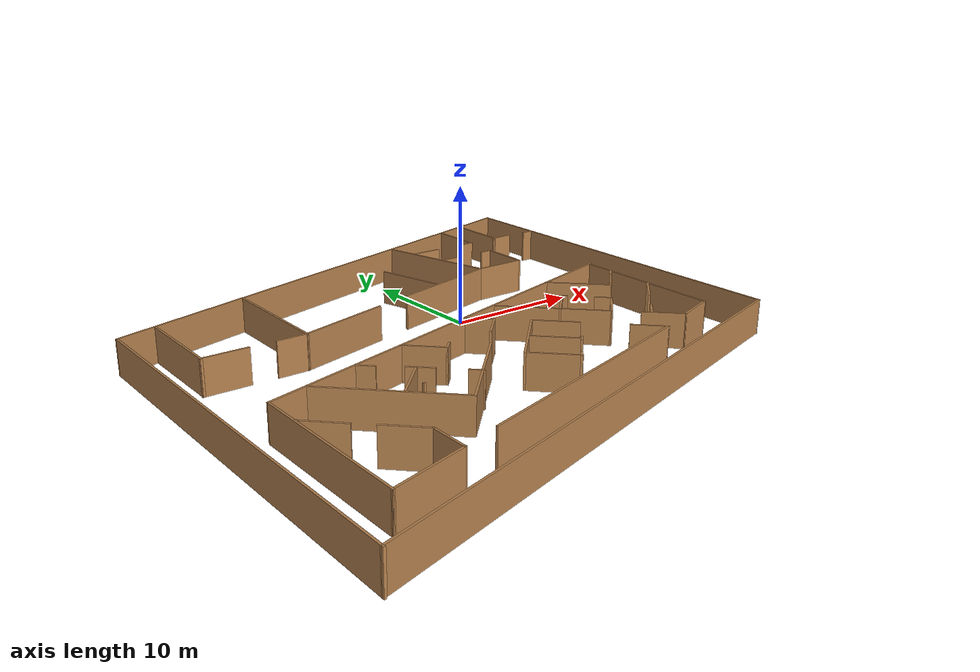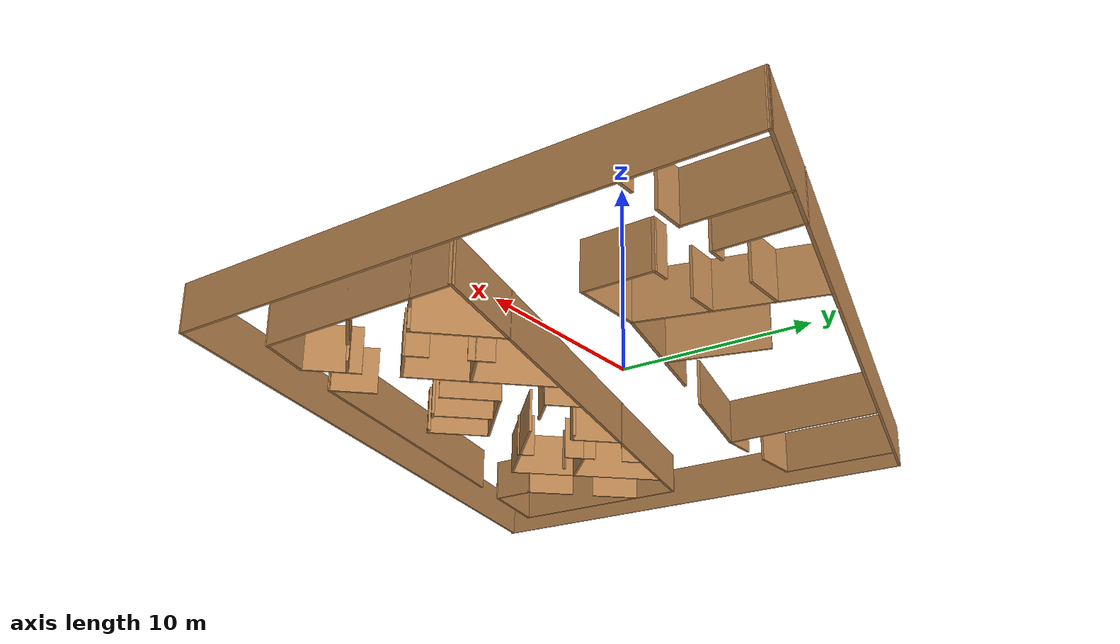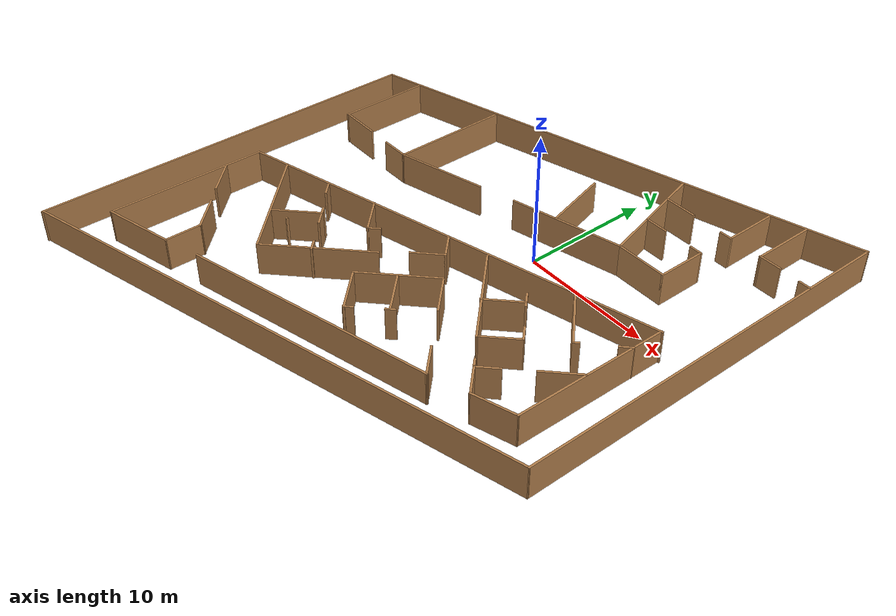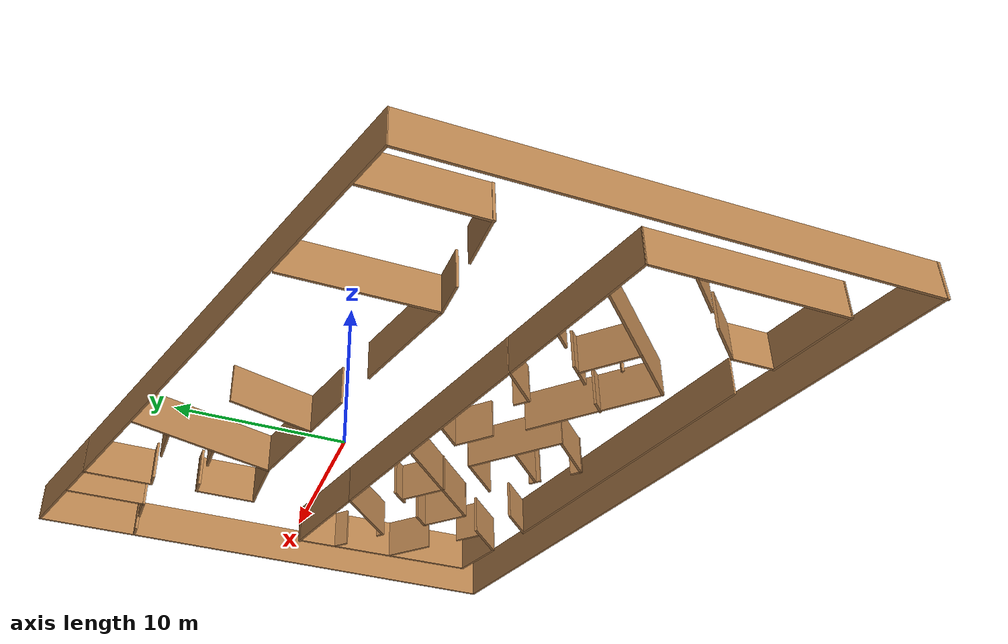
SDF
<?xml version='1.0'?>
<sdf version='1.6'>
  <model name='office_00'>
    <pose frame=''>-3.88497 -4.56169 0 0 -0 0</pose>
    <link name='Wall_101'>
      <collision name='Wall_101_Collision'>
        <geometry>
          <box>
            <size>1 0.15 2.5</size>
          </box>
        </geometry>
        <pose frame=''>0 0 1.25 0 -0 0</pose>
      </collision>
      <visual name='Wall_101_Visual'>
        <pose frame=''>0 0 1.25 0 -0 0</pose>
        <geometry>
          <box>
            <size>1 0.15 2.5</size>
          </box>
        </geometry>
        <material>
          <script>
            <uri>file://media/materials/scripts/gazebo.material</uri>
            <name>Gazebo/Wood</name>
          </script>
          <ambient>1 1 1 1</ambient>
        </material>
      </visual>
      <pose frame=''>-4.40372 -7.82931 0 0 -0 2.35619</pose>
    </link>
    <link name='Wall_103'>
      <collision name='Wall_103_Collision'>
        <geometry>
          <box>
            <size>0.75 0.15 2.5</size>
          </box>
        </geometry>
        <pose frame=''>0 0 1.25 0 -0 0</pose>
      </collision>
      <visual name='Wall_103_Visual'>
        <pose frame=''>0 0 1.25 0 -0 0</pose>
        <geometry>
          <box>
            <size>0.75 0.15 2.5</size>
          </box>
        </geometry>
        <material>
          <script>
            <uri>file://media/materials/scripts/gazebo.material</uri>
            <name>Gazebo/Wood</name>
          </script>
          <ambient>1 1 1 1</ambient>
        </material>
      </visual>
      <pose frame=''>-7.1738 -5.15473 0 0 -0 2.35619</pose>
    </link>
    <link name='Wall_106'>
      <collision name='Wall_106_Collision'>
        <geometry>
          <box>
            <size>1.25 0.15 2.5</size>
          </box>
        </geometry>
        <pose frame=''>0 0 1.25 0 -0 0</pose>
      </collision>
      <visual name='Wall_106_Visual'>
        <pose frame=''>0 0 1.25 0 -0 0</pose>
        <geometry>
          <box>
            <size>1.25 0.15 2.5</size>
          </box>
        </geometry>
        <material>
          <script>
            <uri>file://media/materials/scripts/gazebo.material</uri>
            <name>Gazebo/Wood</name>
          </script>
          <ambient>1 1 1 1</ambient>
        </material>
      </visual>
      <pose frame=''>-9.18517 -3.39843 0 0 0 -0.785398</pose>
    </link>
    <link name='Wall_108'>
      <collision name='Wall_108_Collision'>
        <geometry>
          <box>
            <size>3 0.15 2.5</size>
          </box>
        </geometry>
        <pose frame=''>0 0 1.25 0 -0 0</pose>
      </collision>
      <visual name='Wall_108_Visual'>
        <pose frame=''>0 0 1.25 0 -0 0</pose>
        <geometry>
          <box>
            <size>3 0.15 2.5</size>
          </box>
        </geometry>
        <material>
          <script>
            <uri>file://media/materials/scripts/gazebo.material</uri>
            <name>Gazebo/Wood</name>
          </script>
          <ambient>1 1 1 1</ambient>
        </material>
      </visual>
      <pose frame=''>-4.62958 -2.90259 0 0 0 -0.785398</pose>
    </link>
    <link name='Wall_109'>
      <collision name='Wall_109_Collision'>
        <geometry>
          <box>
            <size>1 0.15 2.5</size>
          </box>
        </geometry>
        <pose frame=''>0 0 1.25 0 -0 0</pose>
      </collision>
      <visual name='Wall_109_Visual'>
        <pose frame=''>0 0 1.25 0 -0 0</pose>
        <geometry>
          <box>
            <size>1 0.15 2.5</size>
          </box>
        </geometry>
        <material>
          <script>
            <uri>file://media/materials/scripts/gazebo.material</uri>
            <name>Gazebo/Wood</name>
          </script>
          <ambient>1 1 1 1</ambient>
        </material>
      </visual>
      <pose frame=''>-3.32143 -3.6097 0 0 -0 0.785398</pose>
    </link>
    <link name='Wall_111'>
      <collision name='Wall_111_Collision'>
        <geometry>
          <box>
            <size>12 0.15 2.5</size>
          </box>
        </geometry>
        <pose frame=''>0 0 1.25 0 -0 0</pose>
      </collision>
      <visual name='Wall_111_Visual'>
        <pose frame=''>0 0 1.25 0 -0 0</pose>
        <geometry>
          <box>
            <size>12 0.15 2.5</size>
          </box>
        </geometry>
        <material>
          <script>
            <uri>file://media/materials/scripts/gazebo.material</uri>
            <name>Gazebo/Wood</name>
          </script>
          <ambient>1 1 1 1</ambient>
        </material>
      </visual>
      <pose frame=''>-16.1268 -10.6352 0 0 0 -1.5708</pose>
    </link>
    <link name='Wall_112'>
      <collision name='Wall_112_Collision'>
        <geometry>
          <box>
            <size>5.5 0.15 2.5</size>
          </box>
        </geometry>
        <pose frame=''>0 0 1.25 0 -0 0</pose>
      </collision>
      <visual name='Wall_112_Visual'>
        <pose frame=''>0 0 1.25 0 -0 0</pose>
        <geometry>
          <box>
            <size>5.5 0.15 2.5</size>
          </box>
        </geometry>
        <material>
          <script>
            <uri>file://media/materials/scripts/gazebo.material</uri>
            <name>Gazebo/Wood</name>
          </script>
          <ambient>1 1 1 1</ambient>
        </material>
      </visual>
      <pose frame=''>-13.5429 -15.8678 0 0 -0 0.261799</pose>
    </link>
    <link name='Wall_113'>
      <collision name='Wall_113_Collision'>
        <geometry>
          <box>
            <size>2.75 0.15 2.5</size>
          </box>
        </geometry>
        <pose frame=''>0 0 1.25 0 -0 0</pose>
      </collision>
      <visual name='Wall_113_Visual'>
        <pose frame=''>0 0 1.25 0 -0 0</pose>
        <geometry>
          <box>
            <size>2.75 0.15 2.5</size>
          </box>
        </geometry>
        <material>
          <script>
            <uri>file://media/materials/scripts/gazebo.material</uri>
            <name>Gazebo/Wood</name>
          </script>
          <ambient>1 1 1 1</ambient>
        </material>
      </visual>
      <pose frame=''>-10.9591 -13.8755 0 0 -0 1.5708</pose>
    </link>
    <link name='Wall_114'>
      <collision name='Wall_114_Collision'>
        <geometry>
          <box>
            <size>3 0.15 2.5</size>
          </box>
        </geometry>
        <pose frame=''>0 0 1.25 0 -0 0</pose>
      </collision>
      <visual name='Wall_114_Visual'>
        <pose frame=''>0 0 1.25 0 -0 0</pose>
        <geometry>
          <box>
            <size>3 0.15 2.5</size>
          </box>
        </geometry>
        <material>
          <script>
            <uri>file://media/materials/scripts/gazebo.material</uri>
            <name>Gazebo/Wood</name>
          </script>
          <ambient>1 1 1 1</ambient>
        </material>
      </visual>
      <pose frame=''>-11.9667 -11.5679 0 0 -0 2.35619</pose>
    </link>
    <link name='Wall_116'>
      <collision name='Wall_116_Collision'>
        <geometry>
          <box>
            <size>3 0.15 2.5</size>
          </box>
        </geometry>
        <pose frame=''>0 0 1.25 0 -0 0</pose>
      </collision>
      <visual name='Wall_116_Visual'>
        <pose frame=''>0 0 1.25 0 -0 0</pose>
        <geometry>
          <box>
            <size>3 0.15 2.5</size>
          </box>
        </geometry>
        <material>
          <script>
            <uri>file://media/materials/scripts/gazebo.material</uri>
            <name>Gazebo/Wood</name>
          </script>
          <ambient>1 1 1 1</ambient>
        </material>
      </visual>
      <pose frame=''>-15.0736 -8.54789 0 0 0 -0.785398</pose>
    </link>
    <link name='Wall_118'>
      <collision name='Wall_118_Collision'>
        <geometry>
          <box>
            <size>4 0.15 2.5</size>
          </box>
        </geometry>
        <pose frame=''>0 0 1.25 0 -0 0</pose>
      </collision>
      <visual name='Wall_118_Visual'>
        <pose frame=''>0 0 1.25 0 -0 0</pose>
        <geometry>
          <box>
            <size>4 0.15 2.5</size>
          </box>
        </geometry>
        <material>
          <script>
            <uri>file://media/materials/scripts/gazebo.material</uri>
            <name>Gazebo/Wood</name>
          </script>
          <ambient>1 1 1 1</ambient>
        </material>
      </visual>
      <pose frame=''>10.3825 7.96801 0 0 -0 0</pose>
    </link>
    <link name='Wall_119'>
      <collision name='Wall_119_Collision'>
        <geometry>
          <box>
            <size>3.75 0.15 2.5</size>
          </box>
        </geometry>
        <pose frame=''>0 0 1.25 0 -0 0</pose>
      </collision>
      <visual name='Wall_119_Visual'>
        <pose frame=''>0 0 1.25 0 -0 0</pose>
        <geometry>
          <box>
            <size>3.75 0.15 2.5</size>
          </box>
        </geometry>
        <material>
          <script>
            <uri>file://media/materials/scripts/gazebo.material</uri>
            <name>Gazebo/Wood</name>
          </script>
          <ambient>1 1 1 1</ambient>
        </material>
      </visual>
      <pose frame=''>12.3075 9.76801 0 0 -0 1.5708</pose>
    </link>
    <link name='Wall_120'>
      <collision name='Wall_120_Collision'>
        <geometry>
          <box>
            <size>1 0.15 2.5</size>
          </box>
        </geometry>
        <pose frame=''>0 0 1.25 0 -0 0</pose>
      </collision>
      <visual name='Wall_120_Visual'>
        <pose frame=''>0 0 1.25 0 -0 0</pose>
        <geometry>
          <box>
            <size>1 0.15 2.5</size>
          </box>
        </geometry>
        <material>
          <script>
            <uri>file://media/materials/scripts/gazebo.material</uri>
            <name>Gazebo/Wood</name>
          </script>
          <ambient>1 1 1 1</ambient>
        </material>
      </visual>
      <pose frame=''>11.8825 11.568 0 0 -0 3.14159</pose>
    </link>
    <link name='Wall_122'>
      <collision name='Wall_122_Collision'>
        <geometry>
          <box>
            <size>1.75 0.15 2.5</size>
          </box>
        </geometry>
        <pose frame=''>0 0 1.25 0 -0 0</pose>
      </collision>
      <visual name='Wall_122_Visual'>
        <pose frame=''>0 0 1.25 0 -0 0</pose>
        <geometry>
          <box>
            <size>1.75 0.15 2.5</size>
          </box>
        </geometry>
        <material>
          <script>
            <uri>file://media/materials/scripts/gazebo.material</uri>
            <name>Gazebo/Wood</name>
          </script>
          <ambient>1 1 1 1</ambient>
        </material>
      </visual>
      <pose frame=''>8.36616 11.5456 0 0 -0 0</pose>
    </link>
    <link name='Wall_124'>
      <collision name='Wall_124_Collision'>
        <geometry>
          <box>
            <size>4.25 0.15 2.5</size>
          </box>
        </geometry>
        <pose frame=''>0 0 1.25 0 -0 0</pose>
      </collision>
      <visual name='Wall_124_Visual'>
        <pose frame=''>0 0 1.25 0 -0 0</pose>
        <geometry>
          <box>
            <size>4.25 0.15 2.5</size>
          </box>
        </geometry>
        <material>
          <script>
            <uri>file://media/materials/scripts/gazebo.material</uri>
            <name>Gazebo/Wood</name>
          </script>
          <ambient>1 1 1 1</ambient>
        </material>
      </visual>
      <pose frame=''>12.4926 16.3835 0 0 0 -1.5708</pose>
    </link>
    <link name='Wall_125'>
      <collision name='Wall_125_Collision'>
        <geometry>
          <box>
            <size>1 0.15 2.5</size>
          </box>
        </geometry>
        <pose frame=''>0 0 1.25 0 -0 0</pose>
      </collision>
      <visual name='Wall_125_Visual'>
        <pose frame=''>0 0 1.25 0 -0 0</pose>
        <geometry>
          <box>
            <size>1 0.15 2.5</size>
          </box>
        </geometry>
        <material>
          <script>
            <uri>file://media/materials/scripts/gazebo.material</uri>
            <name>Gazebo/Wood</name>
          </script>
          <ambient>1 1 1 1</ambient>
        </material>
      </visual>
      <pose frame=''>12.0676 14.3335 0 0 -0 3.14159</pose>
    </link>
    <link name='Wall_127'>
      <collision name='Wall_127_Collision'>
        <geometry>
          <box>
            <size>2.5 0.15 2.5</size>
          </box>
        </geometry>
        <pose frame=''>0 0 1.25 0 -0 0</pose>
      </collision>
      <visual name='Wall_127_Visual'>
        <pose frame=''>0 0 1.25 0 -0 0</pose>
        <geometry>
          <box>
            <size>2.5 0.15 2.5</size>
          </box>
        </geometry>
        <material>
          <script>
            <uri>file://media/materials/scripts/gazebo.material</uri>
            <name>Gazebo/Wood</name>
          </script>
          <ambient>1 1 1 1</ambient>
        </material>
      </visual>
      <pose frame=''>7.96496 14.3466 0 0 -0 0</pose>
    </link>
    <link name='Wall_129'>
      <collision name='Wall_129_Collision'>
        <geometry>
          <box>
            <size>4.86873 0.15 2.5</size>
          </box>
        </geometry>
        <pose frame=''>0 0 1.25 0 -0 0</pose>
      </collision>
      <visual name='Wall_129_Visual'>
        <pose frame=''>0 0 1.25 0 -0 0</pose>
        <geometry>
          <box>
            <size>4.86873 0.15 2.5</size>
          </box>
        </geometry>
        <material>
          <script>
            <uri>file://media/materials/scripts/gazebo.material</uri>
            <name>Gazebo/Wood</name>
          </script>
          <ambient>1 1 1 1</ambient>
        </material>
      </visual>
      <pose frame=''>15.0212 16.7199 0 0 0 -1.57305</pose>
    </link>
    <link name='Wall_13'>
      <collision name='Wall_13_Collision'>
        <geometry>
          <box>
            <size>30 0.15 2.5</size>
          </box>
        </geometry>
        <pose frame=''>0 0 1.25 0 -0 0</pose>
      </collision>
      <visual name='Wall_13_Visual'>
        <pose frame=''>0 0 1.25 0 -0 0</pose>
        <geometry>
          <box>
            <size>30 0.15 2.5</size>
          </box>
        </geometry>
        <material>
          <script>
            <uri>file://media/materials/scripts/gazebo.material</uri>
            <name>Gazebo/Wood</name>
          </script>
          <ambient>1 1 1 1</ambient>
        </material>
      </visual>
      <pose frame=''>-19.0883 -5.34751 0 0 0 -1.5708</pose>
    </link>
    <link name='Wall_131'>
      <collision name='Wall_131_Collision'>
        <geometry>
          <box>
            <size>1.75 0.15 2.5</size>
          </box>
        </geometry>
        <pose frame=''>0 0 1.25 0 -0 0</pose>
      </collision>
      <visual name='Wall_131_Visual'>
        <pose frame=''>0 0 1.25 0 -0 0</pose>
        <geometry>
          <box>
            <size>1.75 0.15 2.5</size>
          </box>
        </geometry>
        <material>
          <script>
            <uri>file://media/materials/scripts/gazebo.material</uri>
            <name>Gazebo/Wood</name>
          </script>
          <ambient>1 1 1 1</ambient>
        </material>
      </visual>
      <pose frame=''>15.786 14.3606 0 0 -0 0</pose>
    </link>
    <link name='Wall_133'>
      <collision name='Wall_133_Collision'>
        <geometry>
          <box>
            <size>1 0.15 2.5</size>
          </box>
        </geometry>
        <pose frame=''>0 0 1.25 0 -0 0</pose>
      </collision>
      <visual name='Wall_133_Visual'>
        <pose frame=''>0 0 1.25 0 -0 0</pose>
        <geometry>
          <box>
            <size>1 0.15 2.5</size>
          </box>
        </geometry>
        <material>
          <script>
            <uri>file://media/materials/scripts/gazebo.material</uri>
            <name>Gazebo/Wood</name>
          </script>
          <ambient>1 1 1 1</ambient>
        </material>
      </visual>
      <pose frame=''>18.6614 14.2716 0 0 -0 3.14159</pose>
    </link>
    <link name='Wall_15'>
      <collision name='Wall_15_Collision'>
        <geometry>
          <box>
            <size>39.7699 0.15 2.5</size>
          </box>
        </geometry>
        <pose frame=''>0 0 1.25 0 -0 0</pose>
      </collision>
      <visual name='Wall_15_Visual'>
        <pose frame=''>0 0 1.25 0 -0 0</pose>
        <geometry>
          <box>
            <size>39.7699 0.15 2.5</size>
          </box>
        </geometry>
        <material>
          <script>
            <uri>file://media/materials/scripts/gazebo.material</uri>
            <name>Gazebo/Wood</name>
          </script>
          <ambient>1 1 1 1</ambient>
        </material>
      </visual>
      <pose frame=''>0 14.957 0 0 -0 0.270745</pose>
    </link>
    <link name='Wall_16'>
      <collision name='Wall_16_Collision'>
        <geometry>
          <box>
            <size>30 0.15 2.5</size>
          </box>
        </geometry>
        <pose frame=''>0 0 1.25 0 -0 0</pose>
      </collision>
      <visual name='Wall_16_Visual'>
        <pose frame=''>0 0 1.25 0 -0 0</pose>
        <geometry>
          <box>
            <size>30 0.15 2.5</size>
          </box>
        </geometry>
        <material>
          <script>
            <uri>file://media/materials/scripts/gazebo.material</uri>
            <name>Gazebo/Wood</name>
          </script>
          <ambient>1 1 1 1</ambient>
        </material>
      </visual>
      <pose frame=''>19.0883 5.33019 0 0 0 -1.5708</pose>
    </link>
    <link name='Wall_17'>
      <collision name='Wall_17_Collision'>
        <geometry>
          <box>
            <size>39.7699 0.15 2.5</size>
          </box>
        </geometry>
        <pose frame=''>0 0 1.25 0 -0 0</pose>
      </collision>
      <visual name='Wall_17_Visual'>
        <pose frame=''>0 0 1.25 0 -0 0</pose>
        <geometry>
          <box>
            <size>39.7699 0.15 2.5</size>
          </box>
        </geometry>
        <material>
          <script>
            <uri>file://media/materials/scripts/gazebo.material</uri>
            <name>Gazebo/Wood</name>
          </script>
          <ambient>1 1 1 1</ambient>
        </material>
      </visual>
      <pose frame=''>0 -14.893 0 0 0 -2.87085</pose>
    </link>
    <link name='Wall_19'>
      <collision name='Wall_19_Collision'>
        <geometry>
          <box>
            <size>7 0.15 2.5</size>
          </box>
        </geometry>
        <pose frame=''>0 0 1.25 0 -0 0</pose>
      </collision>
      <visual name='Wall_19_Visual'>
        <pose frame=''>0 0 1.25 0 -0 0</pose>
        <geometry>
          <box>
            <size>7 0.15 2.5</size>
          </box>
        </geometry>
        <material>
          <script>
            <uri>file://media/materials/scripts/gazebo.material</uri>
            <name>Gazebo/Wood</name>
          </script>
          <ambient>1 1 1 1</ambient>
        </material>
      </visual>
      <pose frame=''>-16.3273 6.83481 0 0 0 -1.5708</pose>
    </link>
    <link name='Wall_20'>
      <collision name='Wall_20_Collision'>
        <geometry>
          <box>
            <size>3.28074 0.15 2.5</size>
          </box>
        </geometry>
        <pose frame=''>0 0 1.25 0 -0 0</pose>
      </collision>
      <visual name='Wall_20_Visual'>
        <pose frame=''>0 0 1.25 0 -0 0</pose>
        <geometry>
          <box>
            <size>3.28074 0.15 2.5</size>
          </box>
        </geometry>
        <material>
          <script>
            <uri>file://media/materials/scripts/gazebo.material</uri>
            <name>Gazebo/Wood</name>
          </script>
          <ambient>1 1 1 1</ambient>
        </material>
      </visual>
      <pose frame=''>-14.7926 3.4251 0 0 0 -0.009771</pose>
    </link>
    <link name='Wall_23'>
      <collision name='Wall_23_Collision'>
        <geometry>
          <box>
            <size>2.25 0.15 2.5</size>
          </box>
        </geometry>
        <pose frame=''>0 0 1.25 0 -0 0</pose>
      </collision>
      <visual name='Wall_23_Visual'>
        <pose frame=''>0 0 1.25 0 -0 0</pose>
        <geometry>
          <box>
            <size>2.25 0.15 2.5</size>
          </box>
        </geometry>
        <material>
          <script>
            <uri>file://media/materials/scripts/gazebo.material</uri>
            <name>Gazebo/Wood</name>
          </script>
          <ambient>1 1 1 1</ambient>
        </material>
      </visual>
      <pose frame=''>-10.2481 3.35702 0 0 -0 0</pose>
    </link>
    <link name='Wall_24'>
      <collision name='Wall_24_Collision'>
        <geometry>
          <box>
            <size>9 0.15 2.5</size>
          </box>
        </geometry>
        <pose frame=''>0 0 1.25 0 -0 0</pose>
      </collision>
      <visual name='Wall_24_Visual'>
        <pose frame=''>0 0 1.25 0 -0 0</pose>
        <geometry>
          <box>
            <size>9 0.15 2.5</size>
          </box>
        </geometry>
        <material>
          <script>
            <uri>file://media/materials/scripts/gazebo.material</uri>
            <name>Gazebo/Wood</name>
          </script>
          <ambient>1 1 1 1</ambient>
        </material>
      </visual>
      <pose frame=''>-9.19811 7.78202 0 0 -0 1.5708</pose>
    </link>
    <link name='Wall_27'>
      <collision name='Wall_27_Collision'>
        <geometry>
          <box>
            <size>9 0.15 2.5</size>
          </box>
        </geometry>
        <pose frame=''>0 0 1.25 0 -0 0</pose>
      </collision>
      <visual name='Wall_27_Visual'>
        <pose frame=''>0 0 1.25 0 -0 0</pose>
        <geometry>
          <box>
            <size>9 0.15 2.5</size>
          </box>
        </geometry>
        <material>
          <script>
            <uri>file://media/materials/scripts/gazebo.material</uri>
            <name>Gazebo/Wood</name>
          </script>
          <ambient>1 1 1 1</ambient>
        </material>
      </visual>
      <pose frame=''>7.31218 12.2768 0 0 -0 1.8326</pose>
    </link>
    <link name='Wall_29'>
      <collision name='Wall_29_Collision'>
        <geometry>
          <box>
            <size>7 0.15 2.5</size>
          </box>
        </geometry>
        <pose frame=''>0 0 1.25 0 -0 0</pose>
      </collision>
      <visual name='Wall_29_Visual'>
        <pose frame=''>0 0 1.25 0 -0 0</pose>
        <geometry>
          <box>
            <size>7 0.15 2.5</size>
          </box>
        </geometry>
        <material>
          <script>
            <uri>file://media/materials/scripts/gazebo.material</uri>
            <name>Gazebo/Wood</name>
          </script>
          <ambient>1 1 1 1</ambient>
        </material>
      </visual>
      <pose frame=''>-5.88982 4.24348 0 0 -0 0.261799</pose>
    </link>
    <link name='Wall_31'>
      <collision name='Wall_31_Collision'>
        <geometry>
          <box>
            <size>8.64817 0.15 2.5</size>
          </box>
        </geometry>
        <pose frame=''>0 0 1.25 0 -0 0</pose>
      </collision>
      <visual name='Wall_31_Visual'>
        <pose frame=''>0 0 1.25 0 -0 0</pose>
        <geometry>
          <box>
            <size>8.64817 0.15 2.5</size>
          </box>
        </geometry>
        <material>
          <script>
            <uri>file://media/materials/scripts/gazebo.material</uri>
            <name>Gazebo/Wood</name>
          </script>
          <ambient>1 1 1 1</ambient>
        </material>
      </visual>
      <pose frame=''>4.33856 6.92426 0 0 0 -2.89341</pose>
    </link>
    <link name='Wall_33'>
      <collision name='Wall_33_Collision'>
        <geometry>
          <box>
            <size>5.25 0.15 2.5</size>
          </box>
        </geometry>
        <pose frame=''>0 0 1.25 0 -0 0</pose>
      </collision>
      <visual name='Wall_33_Visual'>
        <pose frame=''>0 0 1.25 0 -0 0</pose>
        <geometry>
          <box>
            <size>5.25 0.15 2.5</size>
          </box>
        </geometry>
        <material>
          <script>
            <uri>file://media/materials/scripts/gazebo.material</uri>
            <name>Gazebo/Wood</name>
          </script>
          <ambient>1 1 1 1</ambient>
        </material>
      </visual>
      <pose frame=''>2.86209 9.24429 0 0 -0 1.8326</pose>
    </link>
    <link name='Wall_35'>
      <collision name='Wall_35_Collision'>
        <geometry>
          <box>
            <size>33.5 0.15 2.5</size>
          </box>
        </geometry>
        <pose frame=''>0 0 1.25 0 -0 0</pose>
      </collision>
      <visual name='Wall_35_Visual'>
        <pose frame=''>0 0 1.25 0 -0 0</pose>
        <geometry>
          <box>
            <size>33.5 0.15 2.5</size>
          </box>
        </geometry>
        <material>
          <script>
            <uri>file://media/materials/scripts/gazebo.material</uri>
            <name>Gazebo/Wood</name>
          </script>
          <ambient>1 1 1 1</ambient>
        </material>
      </visual>
      <pose frame=''>-0.019965 -0.394374 0 0 -0 0.261799</pose>
    </link>
    <link name='Wall_36'>
      <collision name='Wall_36_Collision'>
        <geometry>
          <box>
            <size>11.5778 0.15 2.5</size>
          </box>
        </geometry>
        <pose frame=''>0 0 1.25 0 -0 0</pose>
      </collision>
      <visual name='Wall_36_Visual'>
        <pose frame=''>0 0 1.25 0 -0 0</pose>
        <geometry>
          <box>
            <size>11.5778 0.15 2.5</size>
          </box>
        </geometry>
        <material>
          <script>
            <uri>file://media/materials/scripts/gazebo.material</uri>
            <name>Gazebo/Wood</name>
          </script>
          <ambient>1 1 1 1</ambient>
        </material>
      </visual>
      <pose frame=''>15.9171 -1.79197 0 0 0 -1.58423</pose>
    </link>
    <link name='Wall_37'>
      <collision name='Wall_37_Collision'>
        <geometry>
          <box>
            <size>3.34228 0.15 2.5</size>
          </box>
        </geometry>
        <pose frame=''>0 0 1.25 0 -0 0</pose>
      </collision>
      <visual name='Wall_37_Visual'>
        <pose frame=''>0 0 1.25 0 -0 0</pose>
        <geometry>
          <box>
            <size>3.34228 0.15 2.5</size>
          </box>
        </geometry>
        <material>
          <script>
            <uri>file://media/materials/scripts/gazebo.material</uri>
            <name>Gazebo/Wood</name>
          </script>
          <ambient>1 1 1 1</ambient>
        </material>
      </visual>
      <pose frame=''>14.3224 -7.99889 0 0 0 -2.82724</pose>
    </link>
    <link name='Wall_39'>
      <collision name='Wall_39_Collision'>
        <geometry>
          <box>
            <size>19 0.15 2.5</size>
          </box>
        </geometry>
        <pose frame=''>0 0 1.25 0 -0 0</pose>
      </collision>
      <visual name='Wall_39_Visual'>
        <pose frame=''>0 0 1.25 0 -0 0</pose>
        <geometry>
          <box>
            <size>19 0.15 2.5</size>
          </box>
        </geometry>
        <material>
          <script>
            <uri>file://media/materials/scripts/gazebo.material</uri>
            <name>Gazebo/Wood</name>
          </script>
          <ambient>1 1 1 1</ambient>
        </material>
      </visual>
      <pose frame=''>0.872194 -11.9065 0 0 0 -2.87979</pose>
    </link>
    <link name='Wall_43'>
      <collision name='Wall_43_Collision'>
        <geometry>
          <box>
            <size>3 0.15 2.5</size>
          </box>
        </geometry>
        <pose frame=''>0 0 1.25 0 -0 0</pose>
      </collision>
      <visual name='Wall_43_Visual'>
        <pose frame=''>0 0 1.25 0 -0 0</pose>
        <geometry>
          <box>
            <size>3 0.15 2.5</size>
          </box>
        </geometry>
        <material>
          <script>
            <uri>file://media/materials/scripts/gazebo.material</uri>
            <name>Gazebo/Wood</name>
          </script>
          <ambient>1 1 1 1</ambient>
        </material>
      </visual>
      <pose frame=''>11.7968 -7.48478 0 0 -0 2.35619</pose>
    </link>
    <link name='Wall_45'>
      <collision name='Wall_45_Collision'>
        <geometry>
          <box>
            <size>8 0.15 2.5</size>
          </box>
        </geometry>
        <pose frame=''>0 0 1.25 0 -0 0</pose>
      </collision>
      <visual name='Wall_45_Visual'>
        <pose frame=''>0 0 1.25 0 -0 0</pose>
        <geometry>
          <box>
            <size>8 0.15 2.5</size>
          </box>
        </geometry>
        <material>
          <script>
            <uri>file://media/materials/scripts/gazebo.material</uri>
            <name>Gazebo/Wood</name>
          </script>
          <ambient>1 1 1 1</ambient>
        </material>
      </visual>
      <pose frame=''>6.52348 -2.33465 0 0 -0 2.35619</pose>
    </link>
    <link name='Wall_47'>
      <collision name='Wall_47_Collision'>
        <geometry>
          <box>
            <size>3 0.15 2.5</size>
          </box>
        </geometry>
        <pose frame=''>0 0 1.25 0 -0 0</pose>
      </collision>
      <visual name='Wall_47_Visual'>
        <pose frame=''>0 0 1.25 0 -0 0</pose>
        <geometry>
          <box>
            <size>3 0.15 2.5</size>
          </box>
        </geometry>
        <material>
          <script>
            <uri>file://media/materials/scripts/gazebo.material</uri>
            <name>Gazebo/Wood</name>
          </script>
          <ambient>1 1 1 1</ambient>
        </material>
      </visual>
      <pose frame=''>7.82869 -1.68579 0 0 -0 0.785398</pose>
    </link>
    <link name='Wall_48'>
      <collision name='Wall_48_Collision'>
        <geometry>
          <box>
            <size>1 0.15 2.5</size>
          </box>
        </geometry>
        <pose frame=''>0 0 1.25 0 -0 0</pose>
      </collision>
      <visual name='Wall_48_Visual'>
        <pose frame=''>0 0 1.25 0 -0 0</pose>
        <geometry>
          <box>
            <size>1 0.15 2.5</size>
          </box>
        </geometry>
        <material>
          <script>
            <uri>file://media/materials/scripts/gazebo.material</uri>
            <name>Gazebo/Wood</name>
          </script>
          <ambient>1 1 1 1</ambient>
        </material>
      </visual>
      <pose frame=''>8.5358 -0.377642 0 0 -0 2.35619</pose>
    </link>
    <link name='Wall_50'>
      <collision name='Wall_50_Collision'>
        <geometry>
          <box>
            <size>1.25 0.15 2.5</size>
          </box>
        </geometry>
        <pose frame=''>0 0 1.25 0 -0 0</pose>
      </collision>
      <visual name='Wall_50_Visual'>
        <pose frame=''>0 0 1.25 0 -0 0</pose>
        <geometry>
          <box>
            <size>1.25 0.15 2.5</size>
          </box>
        </geometry>
        <material>
          <script>
            <uri>file://media/materials/scripts/gazebo.material</uri>
            <name>Gazebo/Wood</name>
          </script>
          <ambient>1 1 1 1</ambient>
        </material>
      </visual>
      <pose frame=''>10.907 -2.70125 0 0 0 -0.785398</pose>
    </link>
    <link name='Wall_51'>
      <collision name='Wall_51_Collision'>
        <geometry>
          <box>
            <size>2.99046 0.15 2.5</size>
          </box>
        </geometry>
        <pose frame=''>0 0 1.25 0 -0 0</pose>
      </collision>
      <visual name='Wall_51_Visual'>
        <pose frame=''>0 0 1.25 0 -0 0</pose>
        <geometry>
          <box>
            <size>2.99046 0.15 2.5</size>
          </box>
        </geometry>
        <material>
          <script>
            <uri>file://media/materials/scripts/gazebo.material</uri>
            <name>Gazebo/Wood</name>
          </script>
          <ambient>1 1 1 1</ambient>
        </material>
      </visual>
      <pose frame=''>10.2974 -4.1001 0 0 0 -2.35052</pose>
    </link>
    <link name='Wall_53'>
      <collision name='Wall_53_Collision'>
        <geometry>
          <box>
            <size>0.5 0.15 2.5</size>
          </box>
        </geometry>
        <pose frame=''>0 0 1.25 0 -0 0</pose>
      </collision>
      <visual name='Wall_53_Visual'>
        <pose frame=''>0 0 1.25 0 -0 0</pose>
        <geometry>
          <box>
            <size>0.5 0.15 2.5</size>
          </box>
        </geometry>
        <material>
          <script>
            <uri>file://media/materials/scripts/gazebo.material</uri>
            <name>Gazebo/Wood</name>
          </script>
          <ambient>1 1 1 1</ambient>
        </material>
      </visual>
      <pose frame=''>8.96006 -0.801907 0 0 0 -0.785398</pose>
    </link>
    <link name='Wall_55'>
      <collision name='Wall_55_Collision'>
        <geometry>
          <box>
            <size>4.75 0.15 2.5</size>
          </box>
        </geometry>
        <pose frame=''>0 0 1.25 0 -0 0</pose>
      </collision>
      <visual name='Wall_55_Visual'>
        <pose frame=''>0 0 1.25 0 -0 0</pose>
        <geometry>
          <box>
            <size>4.75 0.15 2.5</size>
          </box>
        </geometry>
        <material>
          <script>
            <uri>file://media/materials/scripts/gazebo.material</uri>
            <name>Gazebo/Wood</name>
          </script>
          <ambient>1 1 1 1</ambient>
        </material>
      </visual>
      <pose frame=''>11.7464 0.692054 0 0 0 -0.785398</pose>
    </link>
    <link name='Wall_56'>
      <collision name='Wall_56_Collision'>
        <geometry>
          <box>
            <size>0.5 0.15 2.5</size>
          </box>
        </geometry>
        <pose frame=''>0 0 1.25 0 -0 0</pose>
      </collision>
      <visual name='Wall_56_Visual'>
        <pose frame=''>0 0 1.25 0 -0 0</pose>
        <geometry>
          <box>
            <size>0.5 0.15 2.5</size>
          </box>
        </geometry>
        <material>
          <script>
            <uri>file://media/materials/scripts/gazebo.material</uri>
            <name>Gazebo/Wood</name>
          </script>
          <ambient>1 1 1 1</ambient>
        </material>
      </visual>
      <pose frame=''>13.4965 -0.810548 0 0 -0 0.785398</pose>
    </link>
    <link name='Wall_58'>
      <collision name='Wall_58_Collision'>
        <geometry>
          <box>
            <size>1 0.15 2.5</size>
          </box>
        </geometry>
        <pose frame=''>0 0 1.25 0 -0 0</pose>
      </collision>
      <visual name='Wall_58_Visual'>
        <pose frame=''>0 0 1.25 0 -0 0</pose>
        <geometry>
          <box>
            <size>1 0.15 2.5</size>
          </box>
        </geometry>
        <material>
          <script>
            <uri>file://media/materials/scripts/gazebo.material</uri>
            <name>Gazebo/Wood</name>
          </script>
          <ambient>1 1 1 1</ambient>
        </material>
      </visual>
      <pose frame=''>15.6629 1.26379 0 0 0 -2.35619</pose>
    </link>
    <link name='Wall_68'>
      <collision name='Wall_68_Collision'>
        <geometry>
          <box>
            <size>3 0.15 2.5</size>
          </box>
        </geometry>
        <pose frame=''>0 0 1.25 0 -0 0</pose>
      </collision>
      <visual name='Wall_68_Visual'>
        <pose frame=''>0 0 1.25 0 -0 0</pose>
        <geometry>
          <box>
            <size>3 0.15 2.5</size>
          </box>
        </geometry>
        <material>
          <script>
            <uri>file://media/materials/scripts/gazebo.material</uri>
            <name>Gazebo/Wood</name>
          </script>
          <ambient>1 1 1 1</ambient>
        </material>
      </visual>
      <pose frame=''>14.8726 -3.25451 0 0 0 -2.35619</pose>
    </link>
    <link name='Wall_70'>
      <collision name='Wall_70_Collision'>
        <geometry>
          <box>
            <size>1.75 0.15 2.5</size>
          </box>
        </geometry>
        <pose frame=''>0 0 1.25 0 -0 0</pose>
      </collision>
      <visual name='Wall_70_Visual'>
        <pose frame=''>0 0 1.25 0 -0 0</pose>
        <geometry>
          <box>
            <size>1.75 0.15 2.5</size>
          </box>
        </geometry>
        <material>
          <script>
            <uri>file://media/materials/scripts/gazebo.material</uri>
            <name>Gazebo/Wood</name>
          </script>
          <ambient>1 1 1 1</ambient>
        </material>
      </visual>
      <pose frame=''>11.806 -6.3612 0 0 -0 0.785398</pose>
    </link>
    <link name='Wall_72'>
      <collision name='Wall_72_Collision'>
        <geometry>
          <box>
            <size>2.5 0.15 2.5</size>
          </box>
        </geometry>
        <pose frame=''>0 0 1.25 0 -0 0</pose>
      </collision>
      <visual name='Wall_72_Visual'>
        <pose frame=''>0 0 1.25 0 -0 0</pose>
        <geometry>
          <box>
            <size>2.5 0.15 2.5</size>
          </box>
        </geometry>
        <material>
          <script>
            <uri>file://media/materials/scripts/gazebo.material</uri>
            <name>Gazebo/Wood</name>
          </script>
          <ambient>1 1 1 1</ambient>
        </material>
      </visual>
      <pose frame=''>9.14519 -8.63629 0 0 -0 2.35619</pose>
    </link>
    <link name='Wall_74'>
      <collision name='Wall_74_Collision'>
        <geometry>
          <box>
            <size>3.25 0.15 2.5</size>
          </box>
        </geometry>
        <pose frame=''>0 0 1.25 0 -0 0</pose>
      </collision>
      <visual name='Wall_74_Visual'>
        <pose frame=''>0 0 1.25 0 -0 0</pose>
        <geometry>
          <box>
            <size>3.25 0.15 2.5</size>
          </box>
        </geometry>
        <material>
          <script>
            <uri>file://media/materials/scripts/gazebo.material</uri>
            <name>Gazebo/Wood</name>
          </script>
          <ambient>1 1 1 1</ambient>
        </material>
      </visual>
      <pose frame=''>4.8895 -4.35753 0 0 -0 2.35619</pose>
    </link>
    <link name='Wall_76'>
      <collision name='Wall_76_Collision'>
        <geometry>
          <box>
            <size>2 0.15 2.5</size>
          </box>
        </geometry>
        <pose frame=''>0 0 1.25 0 -0 0</pose>
      </collision>
      <visual name='Wall_76_Visual'>
        <pose frame=''>0 0 1.25 0 -0 0</pose>
        <geometry>
          <box>
            <size>2 0.15 2.5</size>
          </box>
        </geometry>
        <material>
          <script>
            <uri>file://media/materials/scripts/gazebo.material</uri>
            <name>Gazebo/Wood</name>
          </script>
          <ambient>1 1 1 1</ambient>
        </material>
      </visual>
      <pose frame=''>1.29755 -0.975982 0 0 0 -0.785398</pose>
    </link>
    <link name='Wall_78'>
      <collision name='Wall_78_Collision'>
        <geometry>
          <box>
            <size>6 0.15 2.5</size>
          </box>
        </geometry>
        <pose frame=''>0 0 1.25 0 -0 0</pose>
      </collision>
      <visual name='Wall_78_Visual'>
        <pose frame=''>0 0 1.25 0 -0 0</pose>
        <geometry>
          <box>
            <size>6 0.15 2.5</size>
          </box>
        </geometry>
        <material>
          <script>
            <uri>file://media/materials/scripts/gazebo.material</uri>
            <name>Gazebo/Wood</name>
          </script>
          <ambient>1 1 1 1</ambient>
        </material>
      </visual>
      <pose frame=''>1.6726 -5.3298 0 0 0 -2.35619</pose>
    </link>
    <link name='Wall_80'>
      <collision name='Wall_80_Collision'>
        <geometry>
          <box>
            <size>3.25 0.15 2.5</size>
          </box>
        </geometry>
        <pose frame=''>0 0 1.25 0 -0 0</pose>
      </collision>
      <visual name='Wall_80_Visual'>
        <pose frame=''>0 0 1.25 0 -0 0</pose>
        <geometry>
          <box>
            <size>3.25 0.15 2.5</size>
          </box>
        </geometry>
        <material>
          <script>
            <uri>file://media/materials/scripts/gazebo.material</uri>
            <name>Gazebo/Wood</name>
          </script>
          <ambient>1 1 1 1</ambient>
        </material>
      </visual>
      <pose frame=''>2.84412 -6.52025 0 0 0 -0.785398</pose>
    </link>
    <link name='Wall_82'>
      <collision name='Wall_82_Collision'>
        <geometry>
          <box>
            <size>3.5 0.15 2.5</size>
          </box>
        </geometry>
        <pose frame=''>0 0 1.25 0 -0 0</pose>
      </collision>
      <visual name='Wall_82_Visual'>
        <pose frame=''>0 0 1.25 0 -0 0</pose>
        <geometry>
          <box>
            <size>3.5 0.15 2.5</size>
          </box>
        </geometry>
        <material>
          <script>
            <uri>file://media/materials/scripts/gazebo.material</uri>
            <name>Gazebo/Wood</name>
          </script>
          <ambient>1 1 1 1</ambient>
        </material>
      </visual>
      <pose frame=''>0.854544 -8.63358 0 0 0 -0.785398</pose>
    </link>
    <link name='Wall_84'>
      <collision name='Wall_84_Collision'>
        <geometry>
          <box>
            <size>0.75 0.15 2.5</size>
          </box>
        </geometry>
        <pose frame=''>0 0 1.25 0 -0 0</pose>
      </collision>
      <visual name='Wall_84_Visual'>
        <pose frame=''>0 0 1.25 0 -0 0</pose>
        <geometry>
          <box>
            <size>0.75 0.15 2.5</size>
          </box>
        </geometry>
        <material>
          <script>
            <uri>file://media/materials/scripts/gazebo.material</uri>
            <name>Gazebo/Wood</name>
          </script>
          <ambient>1 1 1 1</ambient>
        </material>
      </visual>
      <pose frame=''>4.06083 -7.68782 0 0 0 -2.35619</pose>
    </link>
    <link name='Wall_86'>
      <collision name='Wall_86_Collision'>
        <geometry>
          <box>
            <size>0.75 0.15 2.5</size>
          </box>
        </geometry>
        <pose frame=''>0 0 1.25 0 -0 0</pose>
      </collision>
      <visual name='Wall_86_Visual'>
        <pose frame=''>0 0 1.25 0 -0 0</pose>
        <geometry>
          <box>
            <size>0.75 0.15 2.5</size>
          </box>
        </geometry>
        <material>
          <script>
            <uri>file://media/materials/scripts/gazebo.material</uri>
            <name>Gazebo/Wood</name>
          </script>
          <ambient>1 1 1 1</ambient>
        </material>
      </visual>
      <pose frame=''>2.20534 -9.60585 0 0 0 -2.35619</pose>
    </link>
    <link name='Wall_88'>
      <collision name='Wall_88_Collision'>
        <geometry>
          <box>
            <size>2.5 0.15 2.5</size>
          </box>
        </geometry>
        <pose frame=''>0 0 1.25 0 -0 0</pose>
      </collision>
      <visual name='Wall_88_Visual'>
        <pose frame=''>0 0 1.25 0 -0 0</pose>
        <geometry>
          <box>
            <size>2.5 0.15 2.5</size>
          </box>
        </geometry>
        <material>
          <script>
            <uri>file://media/materials/scripts/gazebo.material</uri>
            <name>Gazebo/Wood</name>
          </script>
          <ambient>1 1 1 1</ambient>
        </material>
      </visual>
      <pose frame=''>1.12077 -2.46091 0 0 0 -2.35619</pose>
    </link>
    <link name='Wall_90'>
      <collision name='Wall_90_Collision'>
        <geometry>
          <box>
            <size>8.25 0.15 2.5</size>
          </box>
        </geometry>
        <pose frame=''>0 0 1.25 0 -0 0</pose>
      </collision>
      <visual name='Wall_90_Visual'>
        <pose frame=''>0 0 1.25 0 -0 0</pose>
        <geometry>
          <box>
            <size>8.25 0.15 2.5</size>
          </box>
        </geometry>
        <material>
          <script>
            <uri>file://media/materials/scripts/gazebo.material</uri>
            <name>Gazebo/Wood</name>
          </script>
          <ambient>1 1 1 1</ambient>
        </material>
      </visual>
      <pose frame=''>-3.90141 -7.79943 0 0 0 -2.35619</pose>
    </link>
    <link name='Wall_91'>
      <collision name='Wall_91_Collision'>
        <geometry>
          <box>
            <size>9.5 0.15 2.5</size>
          </box>
        </geometry>
        <pose frame=''>0 0 1.25 0 -0 0</pose>
      </collision>
      <visual name='Wall_91_Visual'>
        <pose frame=''>0 0 1.25 0 -0 0</pose>
        <geometry>
          <box>
            <size>9.5 0.15 2.5</size>
          </box>
        </geometry>
        <material>
          <script>
            <uri>file://media/materials/scripts/gazebo.material</uri>
            <name>Gazebo/Wood</name>
          </script>
          <ambient>1 1 1 1</ambient>
        </material>
      </visual>
      <pose frame=''>-10.0709 -7.35749 0 0 -0 2.35619</pose>
    </link>
    <link name='Wall_96'>
      <collision name='Wall_96_Collision'>
        <geometry>
          <box>
            <size>0.15 0.15 2.5</size>
          </box>
        </geometry>
        <pose frame=''>0 0 1.25 0 -0 0</pose>
      </collision>
      <visual name='Wall_96_Visual'>
        <pose frame=''>0 0 1.25 0 -0 0</pose>
        <geometry>
          <box>
            <size>0.15 0.15 2.5</size>
          </box>
        </geometry>
        <material>
          <script>
            <uri>file://media/materials/scripts/gazebo.material</uri>
            <name>Gazebo/Wood</name>
          </script>
          <ambient>1 1 1 1</ambient>
        </material>
      </visual>
      <pose frame=''>-7.9538 -7.5657 0 0 -0 0</pose>
    </link>
    <link name='Wall_98'>
      <collision name='Wall_98_Collision'>
        <geometry>
          <box>
            <size>3.75 0.15 2.5</size>
          </box>
        </geometry>
        <pose frame=''>0 0 1.25 0 -0 0</pose>
      </collision>
      <visual name='Wall_98_Visual'>
        <pose frame=''>0 0 1.25 0 -0 0</pose>
        <geometry>
          <box>
            <size>3.75 0.15 2.5</size>
          </box>
        </geometry>
        <material>
          <script>
            <uri>file://media/materials/scripts/gazebo.material</uri>
            <name>Gazebo/Wood</name>
          </script>
          <ambient>1 1 1 1</ambient>
        </material>
      </visual>
      <pose frame=''>-8.23446 -6.63966 0 0 -0 0.785398</pose>
    </link>
    <link name='Wall_99'>
      <collision name='Wall_99_Collision'>
        <geometry>
          <box>
            <size>1.25 0.15 2.5</size>
          </box>
        </geometry>
        <pose frame=''>0 0 1.25 0 -0 0</pose>
      </collision>
      <visual name='Wall_99_Visual'>
        <pose frame=''>0 0 1.25 0 -0 0</pose>
        <geometry>
          <box>
            <size>1.25 0.15 2.5</size>
          </box>
        </geometry>
        <material>
          <script>
            <uri>file://media/materials/scripts/gazebo.material</uri>
            <name>Gazebo/Wood</name>
          </script>
          <ambient>1 1 1 1</ambient>
        </material>
      </visual>
      <pose frame=''>-6.57276 -5.75577 0 0 0 -0.785398</pose>
    </link>
    <static>1</static>
  </model>
</sdf>
